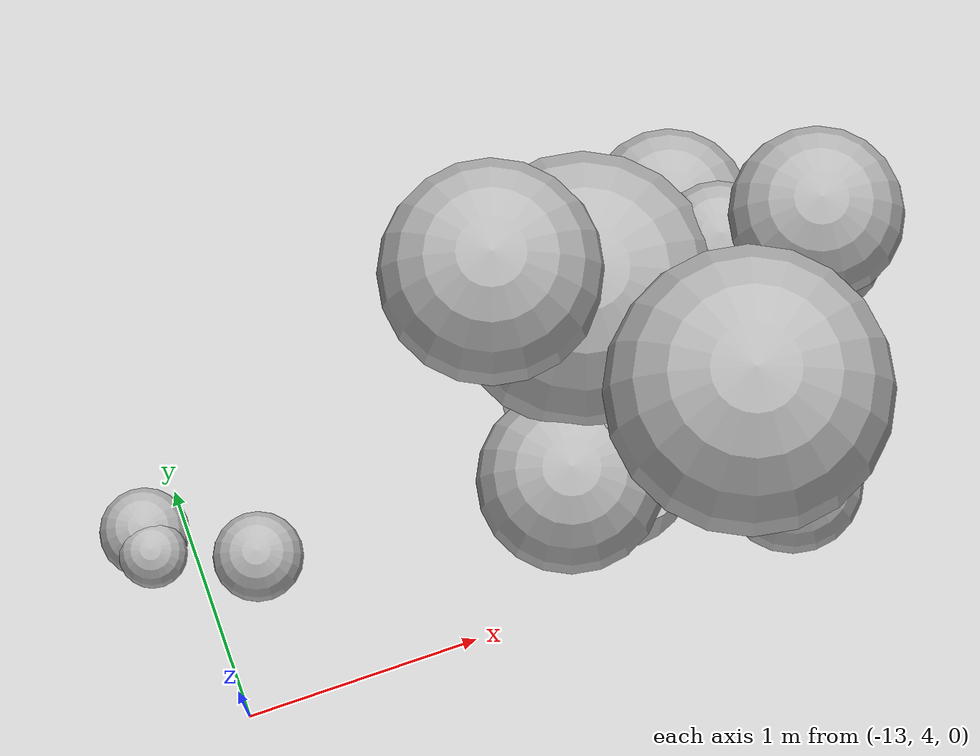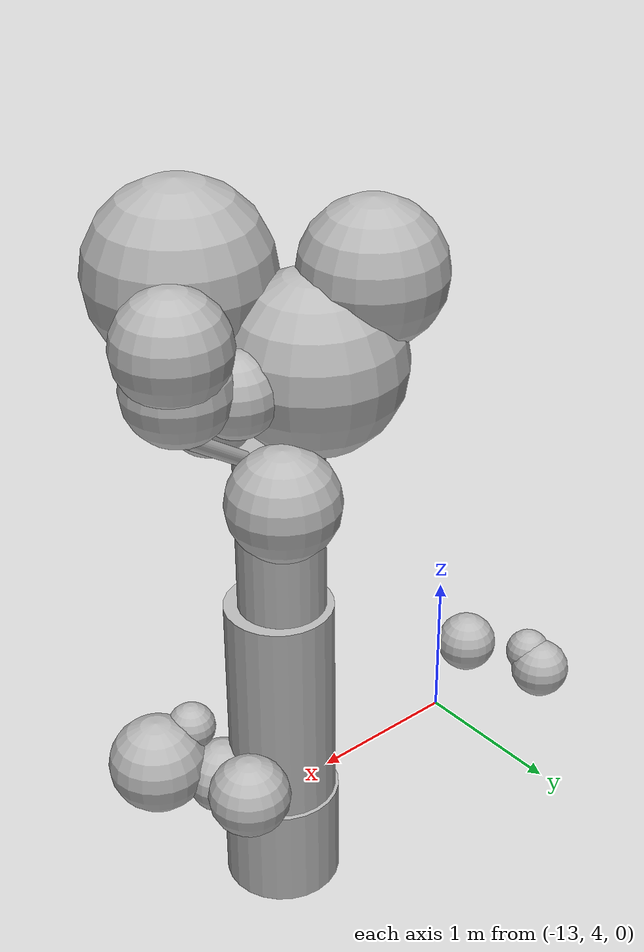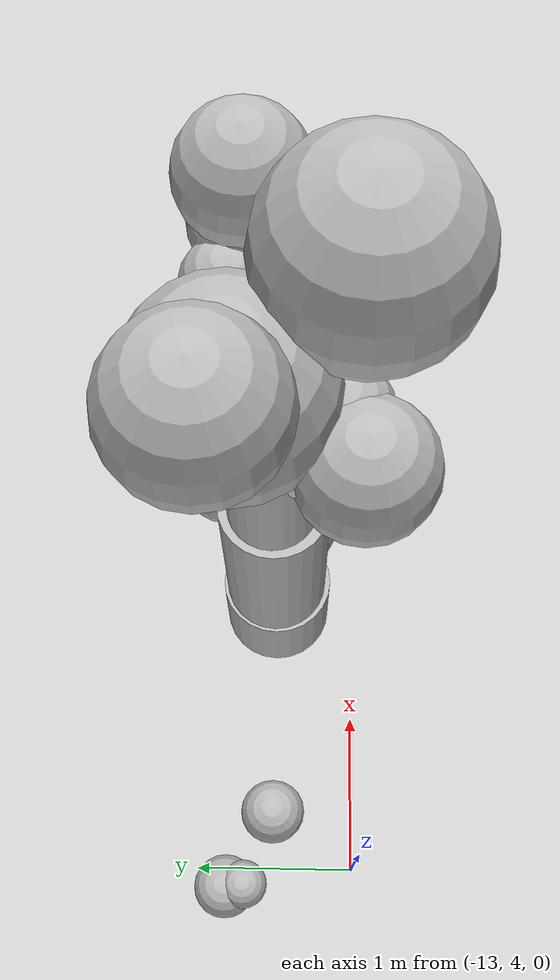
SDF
<sdf version="1.6">
 <world name="default">
  <model name="bush_3">
   <static>true</static>
   <pose>-11.2180 4.5023 0 0 0 0</pose>
   <link name="trunk">
    <pose>0 0 1.5000 0 0 0</pose>
    <collision name="trunk_c">
     <geometry><cylinder><radius>0.3500</radius><length>3.0000</length></cylinder></geometry>
    </collision>
   </link>
   <link name="trunk_v0">
    <pose>-0.0016 0.0007 0.3100 0 0 0</pose>
    <visual name="trunk_v0_v">
     <geometry><cylinder><radius>0.3448</radius><length>0.6448</length></cylinder></geometry>
     <material>
      <script>
       <uri>model://bushfire/materials/scripts</uri>
       <uri>model://bushfire/materials/textures</uri>
       <name>Bushfire/CharBark</name>
      </script>
     </material>
    </visual>
   </link>
   <link name="trunk_v1">
    <pose>-0.0114 0.0052 1.2700 0 0 0</pose>
    <visual name="trunk_v1_v">
     <geometry><cylinder><radius>0.3150</radius><length>1.3520</length></cylinder></geometry>
     <material>
      <script>
       <uri>model://bushfire/materials/scripts</uri>
       <uri>model://bushfire/materials/textures</uri>
       <name>Bushfire/BarkSmooth</name>
      </script>
     </material>
    </visual>
   </link>
   <link name="trunk_v2">
    <pose>-0.0286 0.0132 2.4600 0 0 0</pose>
    <visual name="trunk_v2_v">
     <geometry><cylinder><radius>0.2520</radius><length>1.1232</length></cylinder></geometry>
     <material>
      <script>
       <uri>model://bushfire/materials/scripts</uri>
       <uri>model://bushfire/materials/textures</uri>
       <name>Bushfire/BarkSmooth</name>
      </script>
     </material>
    </visual>
   </link>
   <link name="branch0">
    <pose>0.0659 -0.2049 3.0649 0 0.7124 5.0236</pose>
    <visual name="branch0_v">
     <geometry><cylinder><radius>0.0316</radius><length>0.6587</length></cylinder></geometry>
     <material>
      <script>
       <uri>model://bushfire/materials/scripts</uri>
       <uri>model://bushfire/materials/textures</uri>
       <name>Bushfire/BarkSmooth</name>
      </script>
     </material>
    </visual>
   </link>
   <link name="branch1">
    <pose>0.3013 0.0508 3.0481 0 0.9479 6.4503</pose>
    <visual name="branch1_v">
     <geometry><cylinder><radius>0.0442</radius><length>0.7523</length></cylinder></geometry>
     <material>
      <script>
       <uri>model://bushfire/materials/scripts</uri>
       <uri>model://bushfire/materials/textures</uri>
       <name>Bushfire/BarkSmooth</name>
      </script>
     </material>
    </visual>
   </link>
   <link name="branch2">
    <pose>0.0544 0.2041 2.8079 0 0.8121 7.5933</pose>
    <visual name="branch2_v">
     <geometry><cylinder><radius>0.0504</radius><length>0.5820</length></cylinder></geometry>
     <material>
      <script>
       <uri>model://bushfire/materials/scripts</uri>
       <uri>model://bushfire/materials/textures</uri>
       <name>Bushfire/BarkSmooth</name>
      </script>
     </material>
    </visual>
   </link>
   <link name="branch3">
    <pose>-0.2571 -0.0551 3.0393 0 0.8003 9.6358</pose>
    <visual name="branch3_v">
     <geometry><cylinder><radius>0.0314</radius><length>0.7330</length></cylinder></geometry>
     <material>
      <script>
       <uri>model://bushfire/materials/scripts</uri>
       <uri>model://bushfire/materials/textures</uri>
       <name>Bushfire/BarkSmooth</name>
      </script>
     </material>
    </visual>
   </link>
   <link name="foliage0">
    <pose>-0.1514 -0.3074 3.3013 0 0 0</pose>
    <visual name="foliage0_v">
     <geometry><sphere><radius>0.2452</radius></sphere></geometry>
     <material>
      <script>
       <uri>model://bushfire/materials/scripts</uri>
       <uri>model://bushfire/materials/textures</uri>
       <name>Bushfire/Foliage0</name>
      </script>
     </material>
    </visual>
   </link>
   <link name="foliage1">
    <pose>0.2710 -0.1776 3.2054 0 0 0</pose>
    <visual name="foliage1_v">
     <geometry><sphere><radius>0.2498</radius></sphere></geometry>
     <material>
      <script>
       <uri>model://bushfire/materials/scripts</uri>
       <uri>model://bushfire/materials/textures</uri>
       <name>Bushfire/Foliage1</name>
      </script>
     </material>
    </visual>
   </link>
   <link name="foliage2">
    <pose>-0.1437 0.1768 3.4881 0 0 0</pose>
    <visual name="foliage2_v">
     <geometry><sphere><radius>0.4989</radius></sphere></geometry>
     <material>
      <script>
       <uri>model://bushfire/materials/scripts</uri>
       <uri>model://bushfire/materials/textures</uri>
       <name>Bushfire/Foliage2</name>
      </script>
     </material>
    </visual>
   </link>
   <link name="foliage3">
    <pose>-0.3915 -0.4151 3.2562 0 0 0</pose>
    <visual name="foliage3_v">
     <geometry><sphere><radius>0.3380</radius></sphere></geometry>
     <material>
      <script>
       <uri>model://bushfire/materials/scripts</uri>
       <uri>model://bushfire/materials/textures</uri>
       <name>Bushfire/Foliage2</name>
      </script>
     </material>
    </visual>
   </link>
   <link name="foliage4">
    <pose>0.2122 -0.6305 3.7665 0 0 0</pose>
    <visual name="foliage4_v">
     <geometry><sphere><radius>0.2398</radius></sphere></geometry>
     <material>
      <script>
       <uri>model://bushfire/materials/scripts</uri>
       <uri>model://bushfire/materials/textures</uri>
       <name>Bushfire/Foliage1</name>
      </script>
     </material>
    </visual>
   </link>
   <link name="foliage5">
    <pose>0.6438 0.0864 3.5643 0 0 0</pose>
    <visual name="foliage5_v">
     <geometry><sphere><radius>0.2939</radius></sphere></geometry>
     <material>
      <script>
       <uri>model://bushfire/materials/scripts</uri>
       <uri>model://bushfire/materials/textures</uri>
       <name>Bushfire/Foliage0</name>
      </script>
     </material>
    </visual>
   </link>
   <link name="foliage6">
    <pose>0.3638 0.1820 3.4790 0 0 0</pose>
    <visual name="foliage6_v">
     <geometry><sphere><radius>0.2296</radius></sphere></geometry>
     <material>
      <script>
       <uri>model://bushfire/materials/scripts</uri>
       <uri>model://bushfire/materials/textures</uri>
       <name>Bushfire/Foliage0</name>
      </script>
     </material>
    </visual>
   </link>
   <link name="foliage7">
    <pose>-0.4566 0.2708 3.9263 0 0 0</pose>
    <visual name="foliage7_v">
     <geometry><sphere><radius>0.3973</radius></sphere></geometry>
     <material>
      <script>
       <uri>model://bushfire/materials/scripts</uri>
       <uri>model://bushfire/materials/textures</uri>
       <name>Bushfire/Foliage2</name>
      </script>
     </material>
    </visual>
   </link>
   <link name="foliage8">
    <pose>0.2530 -0.4022 3.8932 0 0 0</pose>
    <visual name="foliage8_v">
     <geometry><sphere><radius>0.5086</radius></sphere></geometry>
     <material>
      <script>
       <uri>model://bushfire/materials/scripts</uri>
       <uri>model://bushfire/materials/textures</uri>
       <name>Bushfire/Foliage2</name>
      </script>
     </material>
    </visual>
   </link>
   <link name="foliage9">
    <pose>0.6873 0.1198 3.8132 0 0 0</pose>
    <visual name="foliage9_v">
     <geometry><sphere><radius>0.3087</radius></sphere></geometry>
     <material>
      <script>
       <uri>model://bushfire/materials/scripts</uri>
       <uri>model://bushfire/materials/textures</uri>
       <name>Bushfire/Foliage1</name>
      </script>
     </material>
    </visual>
   </link>
   <link name="foliage10">
    <pose>0.2890 0.4477 2.9389 0 0 0</pose>
    <visual name="foliage10_v">
     <geometry><sphere><radius>0.3055</radius></sphere></geometry>
     <material>
      <script>
       <uri>model://bushfire/materials/scripts</uri>
       <uri>model://bushfire/materials/textures</uri>
       <name>Bushfire/Foliage0</name>
      </script>
     </material>
    </visual>
   </link>
  </model>
  <model name="scrub">
   <static>true</static>
   <link name="scrub18_1">
    <pose>-10.9060 4.3486 0.7582 0 0 0</pose>
    <visual name="scrub18_1_v">
     <geometry><sphere><radius>0.2246</radius></sphere></geometry>
     <material>
      <script>
       <uri>model://bushfire/materials/scripts</uri>
       <uri>model://bushfire/materials/textures</uri>
       <name>Bushfire/Foliage2</name>
      </script>
     </material>
    </visual>
   </link>
   <link name="scrub18_2">
    <pose>-10.7231 4.8469 1.0397 0 0 0</pose>
    <visual name="scrub18_2_v">
     <geometry><sphere><radius>0.2345</radius></sphere></geometry>
     <material>
      <script>
       <uri>model://bushfire/materials/scripts</uri>
       <uri>model://bushfire/materials/textures</uri>
       <name>Bushfire/Foliage0</name>
      </script>
     </material>
    </visual>
   </link>
   <link name="scrub18_5">
    <pose>-10.6141 4.1045 0.8587 0 0 0</pose>
    <visual name="scrub18_5_v">
     <geometry><sphere><radius>0.2927</radius></sphere></geometry>
     <material>
      <script>
       <uri>model://bushfire/materials/scripts</uri>
       <uri>model://bushfire/materials/textures</uri>
       <name>Bushfire/Foliage0</name>
      </script>
     </material>
    </visual>
   </link>
   <link name="scrub18_6">
    <pose>-11.1469 4.6331 0.8558 0 0 0</pose>
    <visual name="scrub18_6_v">
     <geometry><sphere><radius>0.1624</radius></sphere></geometry>
     <material>
      <script>
       <uri>model://bushfire/materials/scripts</uri>
       <uri>model://bushfire/materials/textures</uri>
       <name>Bushfire/Foliage2</name>
      </script>
     </material>
    </visual>
   </link>
   <link name="scrub18_7">
    <pose>-10.8447 4.1354 1.0323 0 0 0</pose>
    <visual name="scrub18_7_v">
     <geometry><sphere><radius>0.1444</radius></sphere></geometry>
     <material>
      <script>
       <uri>model://bushfire/materials/scripts</uri>
       <uri>model://bushfire/materials/textures</uri>
       <name>Bushfire/Foliage0</name>
      </script>
     </material>
    </visual>
   </link>
   <link name="scrub56_0">
    <pose>-13.1538 4.6721 0.7637 0 0 0</pose>
    <visual name="scrub56_0_v">
     <geometry><sphere><radius>0.1408</radius></sphere></geometry>
     <material>
      <script>
       <uri>model://bushfire/materials/scripts</uri>
       <uri>model://bushfire/materials/textures</uri>
       <name>Bushfire/Foliage2</name>
      </script>
     </material>
    </visual>
   </link>
   <link name="scrub56_4">
    <pose>-13.1603 4.7794 0.6824 0 0 0</pose>
    <visual name="scrub56_4_v">
     <geometry><sphere><radius>0.1840</radius></sphere></geometry>
     <material>
      <script>
       <uri>model://bushfire/materials/scripts</uri>
       <uri>model://bushfire/materials/textures</uri>
       <name>Bushfire/Foliage0</name>
      </script>
     </material>
    </visual>
   </link>
   <link name="scrub56_7">
    <pose>-12.7527 4.5009 0.9386 0 0 0</pose>
    <visual name="scrub56_7_v">
     <geometry><sphere><radius>0.1833</radius></sphere></geometry>
     <material>
      <script>
       <uri>model://bushfire/materials/scripts</uri>
       <uri>model://bushfire/materials/textures</uri>
       <name>Bushfire/Foliage0</name>
      </script>
     </material>
    </visual>
   </link>
  </model>
 </world>
</sdf>
